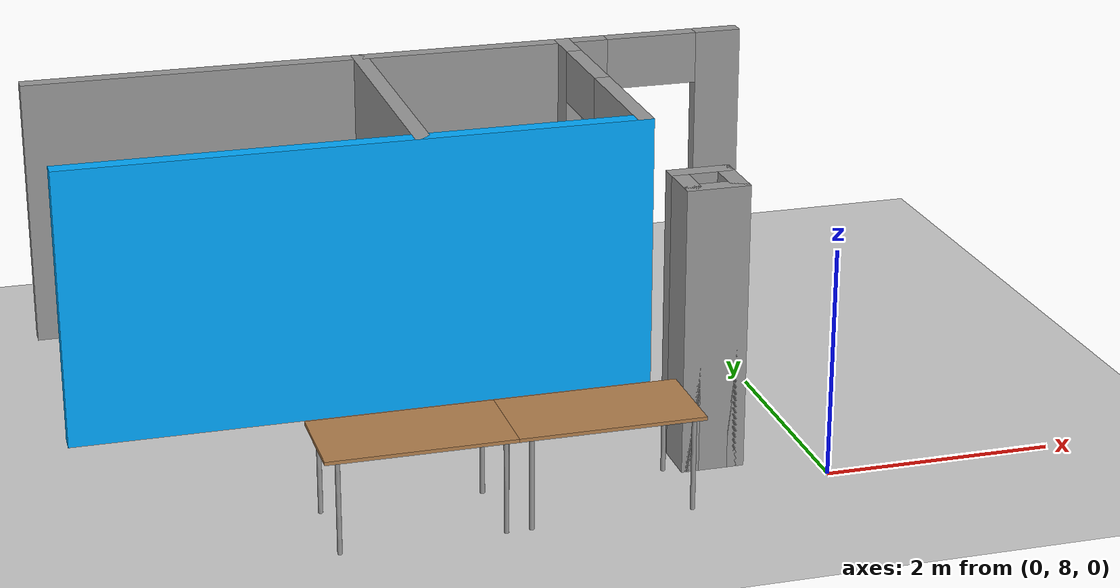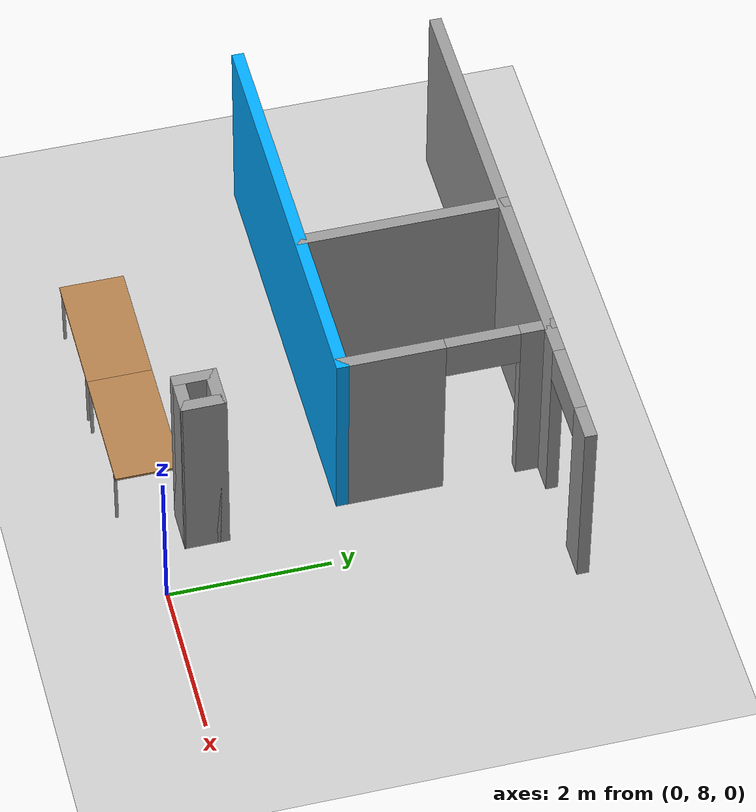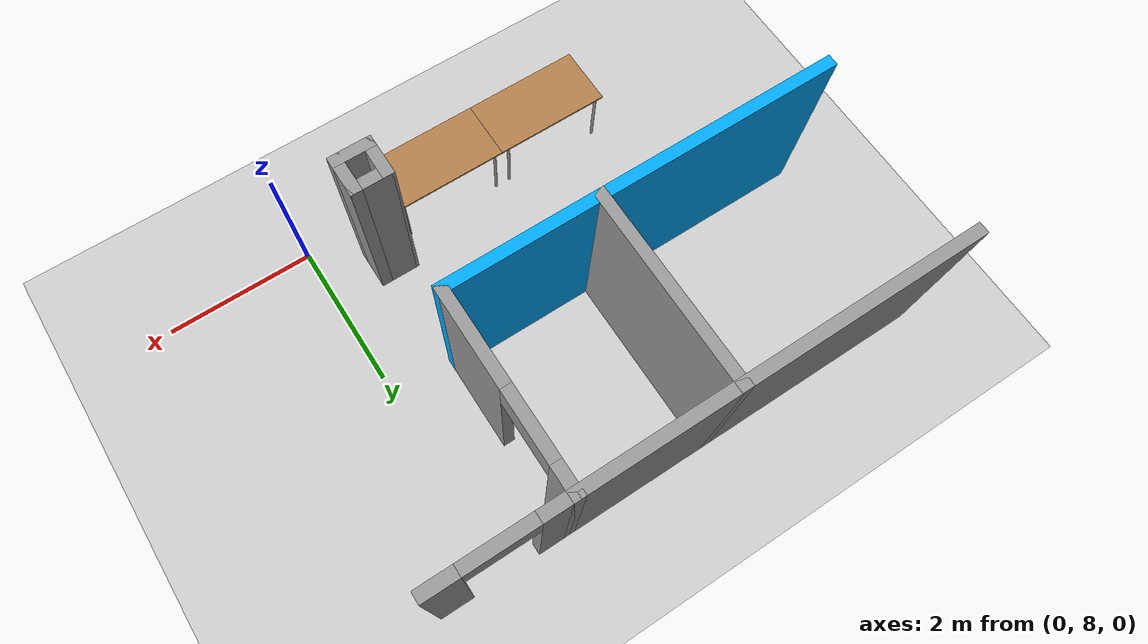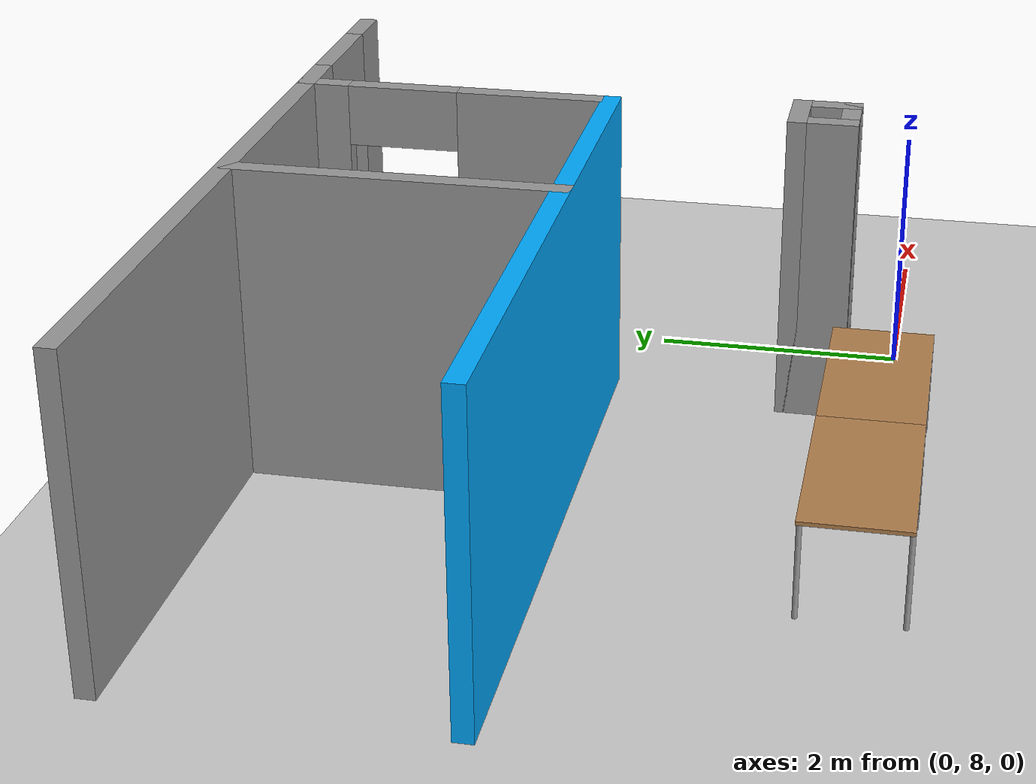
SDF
<sdf version="1.6">
 <world name="default">
  <model name="ground_plane">
   <static>1</static>
   <link name="link">
    <collision name="collision">
     <geometry><plane><normal>0 0 1</normal><size>100 100</size></plane></geometry>
     <surface><friction><ode><mu>100</mu><mu2>50</mu2></ode></friction></surface>
    </collision>
    <visual name="visual">
     <cast_shadows>0</cast_shadows>
     <geometry><plane><normal>0 0 1</normal><size>100 100</size></plane></geometry>
     <material>
      <script><uri>file://media/materials/scripts/gazebo.material</uri><name>Gazebo/Grey</name></script>
     </material>
    </visual>
   </link>
  </model>
  <model name="Building">
   <link name="Wall_42">
    <collision name="Wall_42_Collision">
     <geometry><box><size>5.25 0.15 2.5</size></box></geometry>
     <pose>0 0 1.25 0 -0 0</pose>
    </collision>
    <visual name="Wall_42_Visual">
     <pose>0 0 1.25 0 -0 0</pose>
     <geometry><box><size>5.25 0.15 2.5</size></box></geometry>
     <material>
      <script><uri>file://media/materials/scripts/gazebo.material</uri><name>Gazebo/Grey</name></script>
      <ambient>1 1 1 1</ambient>
     </material>
     <meta><layer>0</layer></meta>
    </visual>
    <pose>-3.45 12.8364 0 0 -0 0</pose>
   </link>
   <link name="Wall_44">
    <pose>-0.05 12.8364 0 0 -0 0</pose>
    <visual name="Wall_44_Visual_0">
     <pose>-0.676746 0 1.25 0 -0 0</pose>
     <geometry><box><size>0.496509 0.15 2.5</size></box></geometry>
     <material>
      <script><uri>file://media/materials/scripts/gazebo.material</uri><name>Gazebo/Grey</name></script>
      <ambient>1 1 1 1</ambient>
     </material>
     <meta><layer>0</layer></meta>
    </visual>
    <collision name="Wall_44_Collision_0">
     <geometry><box><size>0.496509 0.15 2.5</size></box></geometry>
     <pose>-0.676746 0 1.25 0 -0 0</pose>
    </collision>
    <visual name="Wall_44_Visual_1">
     <pose>0.698254 0 1.25 0 -0 0</pose>
     <geometry><box><size>0.453491 0.15 2.5</size></box></geometry>
     <material>
      <script><uri>file://media/materials/scripts/gazebo.material</uri><name>Gazebo/Grey</name></script>
      <ambient>1 1 1 1</ambient>
     </material>
     <meta><layer>0</layer></meta>
    </visual>
    <collision name="Wall_44_Collision_1">
     <geometry><box><size>0.453491 0.15 2.5</size></box></geometry>
     <pose>0.698254 0 1.25 0 -0 0</pose>
    </collision>
    <visual name="Wall_44_Visual_2">
     <pose>0.021509 0 2.25 0 -0 0</pose>
     <geometry><box><size>0.9 0.15 0.5</size></box></geometry>
     <material>
      <script><uri>file://media/materials/scripts/gazebo.material</uri><name>Gazebo/Grey</name></script>
      <ambient>1 1 1 1</ambient>
     </material>
     <meta><layer>0</layer></meta>
    </visual>
    <collision name="Wall_44_Collision_2">
     <geometry><box><size>0.9 0.15 0.5</size></box></geometry>
     <pose>0.021509 0 2.25 0 -0 0</pose>
    </collision>
   </link>
   <link name="Wall_47">
    <pose>-0.9 11.5864 0 0 0 -1.5708</pose>
    <visual name="Wall_47_Visual_0">
     <pose>-1.10875 0 1.25 0 -0 0</pose>
     <geometry><box><size>0.432501 0.15 2.5</size></box></geometry>
     <material>
      <script><uri>file://media/materials/scripts/gazebo.material</uri><name>Gazebo/Grey</name></script>
      <ambient>1 1 1 1</ambient>
     </material>
     <meta><layer>0</layer></meta>
    </visual>
    <collision name="Wall_47_Collision_0">
     <geometry><box><size>0.432501 0.15 2.5</size></box></geometry>
     <pose>-1.10875 0 1.25 0 -0 0</pose>
    </collision>
    <visual name="Wall_47_Visual_1">
     <pose>0.66625 0 1.25 0 -0 0</pose>
     <geometry><box><size>1.3175 0.15 2.5</size></box></geometry>
     <material>
      <script><uri>file://media/materials/scripts/gazebo.material</uri><name>Gazebo/Grey</name></script>
      <ambient>1 1 1 1</ambient>
     </material>
     <meta><layer>0</layer></meta>
    </visual>
    <collision name="Wall_47_Collision_1">
     <geometry><box><size>1.3175 0.15 2.5</size></box></geometry>
     <pose>0.66625 0 1.25 0 -0 0</pose>
    </collision>
    <visual name="Wall_47_Visual_2">
     <pose>-0.442499 0 2.25 0 -0 0</pose>
     <geometry><box><size>0.9 0.15 0.5</size></box></geometry>
     <material>
      <script><uri>file://media/materials/scripts/gazebo.material</uri><name>Gazebo/Grey</name></script>
      <ambient>1 1 1 1</ambient>
     </material>
     <meta><layer>0</layer></meta>
    </visual>
    <collision name="Wall_47_Collision_2">
     <geometry><box><size>0.9 0.15 0.5</size></box></geometry>
     <pose>-0.442499 0 2.25 0 -0 0</pose>
    </collision>
   </link>
   <link name="Wall_49">
    <collision name="Wall_49_Collision">
     <geometry><box><size>5.25 0.15 2.5</size></box></geometry>
     <pose>0 0 1.25 0 -0 0</pose>
    </collision>
    <visual name="Wall_49_Visual">
     <pose>0 0 1.25 0 -0 0</pose>
     <geometry><box><size>5.25 0.15 2.5</size></box></geometry>
     <material>
      <script><uri>file://media/materials/scripts/gazebo.material</uri><name>Gazebo/Grey</name></script>
      <ambient>0 0.666667 1 1</ambient>
     </material>
     <meta><layer>0</layer></meta>
    </visual>
    <pose>-3.45 10.3364 0 0 -0 3.14159</pose>
   </link>
   <link name="Wall_61">
    <collision name="Wall_61_Collision">
     <geometry><box><size>2.65 0.15 2.5</size></box></geometry>
     <pose>0 0 1.25 0 -0 0</pose>
    </collision>
    <visual name="Wall_61_Visual">
     <pose>0 0 1.25 0 -0 0</pose>
     <geometry><box><size>2.65 0.15 2.5</size></box></geometry>
     <material>
      <script><uri>file://media/materials/scripts/gazebo.material</uri><name>Gazebo/Grey</name></script>
      <ambient>1 1 1 1</ambient>
     </material>
     <meta><layer>0</layer></meta>
    </visual>
    <pose>-2.9 11.5864 0 0 0 -1.5708</pose>
   </link>
   <link name="Wall_63">
    <collision name="Wall_63_Collision">
     <geometry><box><size>0.55 0.15 2.5</size></box></geometry>
     <pose>0 0 1.25 0 -0 0</pose>
    </collision>
    <visual name="Wall_63_Visual">
     <pose>0 0 1.25 0 -0 0</pose>
     <geometry><box><size>0.55 0.15 2.5</size></box></geometry>
     <material>
      <script><uri>file://media/materials/scripts/gazebo.material</uri><name>Gazebo/Grey</name></script>
      <ambient>1 1 1 1</ambient>
     </material>
     <meta><layer>0</layer></meta>
    </visual>
    <pose>-0.9 8.83639 0 0 -0 3.14159</pose>
   </link>
   <link name="Wall_65">
    <collision name="Wall_65_Collision">
     <geometry><box><size>0.55 0.15 2.5</size></box></geometry>
     <pose>0 0 1.25 0 -0 0</pose>
    </collision>
    <visual name="Wall_65_Visual">
     <pose>0 0 1.25 0 -0 0</pose>
     <geometry><box><size>0.55 0.15 2.5</size></box></geometry>
     <material>
      <script><uri>file://media/materials/scripts/gazebo.material</uri><name>Gazebo/Grey</name></script>
      <ambient>1 1 1 1</ambient>
     </material>
     <meta><layer>0</layer></meta>
    </visual>
    <pose>-1.1 8.63639 0 0 0 -1.5708</pose>
   </link>
   <link name="Wall_67">
    <collision name="Wall_67_Collision">
     <geometry><box><size>0.55 0.15 2.5</size></box></geometry>
     <pose>0 0 1.25 0 -0 0</pose>
    </collision>
    <visual name="Wall_67_Visual">
     <pose>0 0 1.25 0 -0 0</pose>
     <geometry><box><size>0.55 0.15 2.5</size></box></geometry>
     <material>
      <script><uri>file://media/materials/scripts/gazebo.material</uri><name>Gazebo/Grey</name></script>
      <ambient>1 1 1 1</ambient>
     </material>
     <meta><layer>0</layer></meta>
    </visual>
    <pose>-0.9 8.43639 0 0 -0 0</pose>
   </link>
   <link name="Wall_69">
    <collision name="Wall_69_Collision">
     <geometry><box><size>0.55 0.15 2.5</size></box></geometry>
     <pose>0 0 1.25 0 -0 0</pose>
    </collision>
    <visual name="Wall_69_Visual">
     <pose>0 0 1.25 0 -0 0</pose>
     <geometry><box><size>0.55 0.15 2.5</size></box></geometry>
     <material>
      <script><uri>file://media/materials/scripts/gazebo.material</uri><name>Gazebo/Grey</name></script>
      <ambient>1 1 1 1</ambient>
     </material>
     <meta><layer>0</layer></meta>
    </visual>
    <pose>-0.7 8.63639 0 0 0 -1.5708</pose>
   </link>
   <static>1</static>
  </model>
  <model name="tablealt_0_clone">
   <link name="link">
    <inertial>
     <mass>1</mass>
     <inertia><ixx>1</ixx><ixy>0</ixy><ixz>0</ixz><iyy>1</iyy><iyz>0</iyz><izz>1</izz></inertia>
    </inertial>
    <visual name="back_right_leg">
     <pose>-0.68 -0.38 0.4 0 -0 0</pose>
     <geometry><cylinder><radius>0.02</radius><length>0.8</length></cylinder></geometry>
     <material>
      <script><uri>file://media/materials/scripts/gazebo.material</uri><name>Gazebo/Grey</name></script>
      <shader type="pixel"><normal_map>__default__</normal_map></shader>
      <ambient>0.3 0.3 0.3 1</ambient>
      <diffuse>0.7 0.7 0.7 1</diffuse>
      <specular>0.01 0.01 0.01 1</specular>
      <emissive>0 0 0 1</emissive>
     </material>
    </visual>
    <visual name="back_left_leg">
     <pose>-0.68 0.38 0.4 0 -0 0</pose>
     <geometry><cylinder><radius>0.02</radius><length>0.8</length></cylinder></geometry>
     <material>
      <script><uri>file://media/materials/scripts/gazebo.material</uri><name>Gazebo/Grey</name></script>
      <shader type="pixel"><normal_map>__default__</normal_map></shader>
      <ambient>0.3 0.3 0.3 1</ambient>
      <diffuse>0.7 0.7 0.7 1</diffuse>
      <specular>0.01 0.01 0.01 1</specular>
      <emissive>0 0 0 1</emissive>
     </material>
    </visual>
    <visual name="visual1">
     <pose>0 0 0.8 0 -0 0</pose>
     <geometry><box><size>1.57 0.8 0.03</size></box></geometry>
     <material>
      <script><uri>file://media/materials/scripts/gazebo.material</uri><name>Gazebo/Wood</name></script>
      <shader type="pixel"><normal_map>__default__</normal_map></shader>
      <ambient>1 1 1 1</ambient>
      <diffuse>1 1 1 1</diffuse>
      <specular>0.2 0.2 0.2 1</specular>
      <emissive>0 0 0 1</emissive>
     </material>
    </visual>
    <visual name="front_left_leg">
     <pose>0.68 0.38 0.4 0 -0 0</pose>
     <geometry><cylinder><radius>0.02</radius><length>0.8</length></cylinder></geometry>
     <material>
      <script><uri>file://media/materials/scripts/gazebo.material</uri><name>Gazebo/Grey</name></script>
      <shader type="pixel"><normal_map>__default__</normal_map></shader>
      <ambient>0.3 0.3 0.3 1</ambient>
      <diffuse>0.7 0.7 0.7 1</diffuse>
      <specular>0.01 0.01 0.01 1</specular>
      <emissive>0 0 0 1</emissive>
     </material>
    </visual>
    <visual name="front_right_leg">
     <pose>0.68 -0.38 0.4 0 -0 0</pose>
     <geometry><cylinder><radius>0.02</radius><length>0.8</length></cylinder></geometry>
     <material>
      <script><uri>file://media/materials/scripts/gazebo.material</uri><name>Gazebo/Grey</name></script>
      <shader type="pixel"><normal_map>__default__</normal_map></shader>
      <ambient>0.3 0.3 0.3 1</ambient>
      <diffuse>0.7 0.7 0.7 1</diffuse>
      <specular>0.01 0.01 0.01 1</specular>
      <emissive>0 0 0 1</emissive>
     </material>
    </visual>
    <collision name="front_right_leg">
     <pose>0.68 -0.38 0.4 0 -0 0</pose>
     <geometry><cylinder><radius>0.02</radius><length>0.8</length></cylinder></geometry>
     <surface>
      <friction>
       <ode><mu>1</mu><mu2>1</mu2><fdir1>0 0 0</fdir1><slip1>0</slip1><slip2>0</slip2></ode>
       <torsional>
        <coefficient>1</coefficient>
        <patch_radius>0</patch_radius>
        <surface_radius>0</surface_radius>
        <use_patch_radius>1</use_patch_radius>
        <ode><slip>0</slip></ode>
       </torsional>
      </friction>
      <bounce><restitution_coefficient>0</restitution_coefficient><threshold>1e+06</threshold></bounce>
      <contact>
       <collide_without_contact>0</collide_without_contact>
       <collide_without_contact_bitmask>1</collide_without_contact_bitmask>
       <collide_bitmask>1</collide_bitmask>
       <ode>
        <soft_cfm>0</soft_cfm>
        <soft_erp>0.2</soft_erp>
        <kp>1e+13</kp>
        <kd>1</kd>
        <max_vel>0.01</max_vel>
        <min_depth>0</min_depth>
       </ode>
       <bullet>
        <split_impulse>1</split_impulse>
        <split_impulse_penetration_threshold>-0.01</split_impulse_penetration_threshold>
        <soft_cfm>0</soft_cfm>
        <soft_erp>0.2</soft_erp>
        <kp>1e+13</kp>
        <kd>1</kd>
       </bullet>
      </contact>
     </surface>
    </collision>
    <collision name="surface">
     <pose>0 0 0.8 0 -0 0</pose>
     <geometry><box><size>1.5 0.8 0.03</size></box></geometry>
     <surface>
      <friction>
       <ode><mu>0.6</mu><mu2>0.6</mu2><fdir1>0 0 0</fdir1><slip1>0</slip1><slip2>0</slip2></ode>
       <torsional>
        <coefficient>1</coefficient>
        <patch_radius>0</patch_radius>
        <surface_radius>0</surface_radius>
        <use_patch_radius>1</use_patch_radius>
        <ode><slip>0</slip></ode>
       </torsional>
      </friction>
      <bounce><restitution_coefficient>0</restitution_coefficient><threshold>1e+06</threshold></bounce>
      <contact>
       <collide_without_contact>0</collide_without_contact>
       <collide_without_contact_bitmask>1</collide_without_contact_bitmask>
       <collide_bitmask>1</collide_bitmask>
       <ode>
        <soft_cfm>0</soft_cfm>
        <soft_erp>0.2</soft_erp>
        <kp>1e+13</kp>
        <kd>1</kd>
        <max_vel>0.01</max_vel>
        <min_depth>0</min_depth>
       </ode>
       <bullet>
        <split_impulse>1</split_impulse>
        <split_impulse_penetration_threshold>-0.01</split_impulse_penetration_threshold>
        <soft_cfm>0</soft_cfm>
        <soft_erp>0.2</soft_erp>
        <kp>1e+13</kp>
        <kd>1</kd>
       </bullet>
      </contact>
     </surface>
    </collision>
    <collision name="front_left_leg">
     <pose>0.68 0.38 0.4 0 -0 0</pose>
     <geometry><cylinder><radius>0.02</radius><length>0.8</length></cylinder></geometry>
     <surface>
      <friction>
       <ode><mu>1</mu><mu2>1</mu2><fdir1>0 0 0</fdir1><slip1>0</slip1><slip2>0</slip2></ode>
       <torsional>
        <coefficient>1</coefficient>
        <patch_radius>0</patch_radius>
        <surface_radius>0</surface_radius>
        <use_patch_radius>1</use_patch_radius>
        <ode><slip>0</slip></ode>
       </torsional>
      </friction>
      <bounce><restitution_coefficient>0</restitution_coefficient><threshold>1e+06</threshold></bounce>
      <contact>
       <collide_without_contact>0</collide_without_contact>
       <collide_without_contact_bitmask>1</collide_without_contact_bitmask>
       <collide_bitmask>1</collide_bitmask>
       <ode>
        <soft_cfm>0</soft_cfm>
        <soft_erp>0.2</soft_erp>
        <kp>1e+13</kp>
        <kd>1</kd>
        <max_vel>0.01</max_vel>
        <min_depth>0</min_depth>
       </ode>
       <bullet>
        <split_impulse>1</split_impulse>
        <split_impulse_penetration_threshold>-0.01</split_impulse_penetration_threshold>
        <soft_cfm>0</soft_cfm>
        <soft_erp>0.2</soft_erp>
        <kp>1e+13</kp>
        <kd>1</kd>
       </bullet>
      </contact>
     </surface>
    </collision>
    <collision name="back_left_leg">
     <pose>-0.68 0.38 0.4 0 -0 0</pose>
     <geometry><cylinder><radius>0.02</radius><length>0.8</length></cylinder></geometry>
     <surface>
      <friction>
       <ode><mu>1</mu><mu2>1</mu2><fdir1>0 0 0</fdir1><slip1>0</slip1><slip2>0</slip2></ode>
       <torsional>
        <coefficient>1</coefficient>
        <patch_radius>0</patch_radius>
        <surface_radius>0</surface_radius>
        <use_patch_radius>1</use_patch_radius>
        <ode><slip>0</slip></ode>
       </torsional>
      </friction>
      <bounce><restitution_coefficient>0</restitution_coefficient><threshold>1e+06</threshold></bounce>
      <contact>
       <collide_without_contact>0</collide_without_contact>
       <collide_without_contact_bitmask>1</collide_without_contact_bitmask>
       <collide_bitmask>1</collide_bitmask>
       <ode>
        <soft_cfm>0</soft_cfm>
        <soft_erp>0.2</soft_erp>
        <kp>1e+13</kp>
        <kd>1</kd>
        <max_vel>0.01</max_vel>
        <min_depth>0</min_depth>
       </ode>
       <bullet>
        <split_impulse>1</split_impulse>
        <split_impulse_penetration_threshold>-0.01</split_impulse_penetration_threshold>
        <soft_cfm>0</soft_cfm>
        <soft_erp>0.2</soft_erp>
        <kp>1e+13</kp>
        <kd>1</kd>
       </bullet>
      </contact>
     </surface>
    </collision>
    <collision name="back_right_leg">
     <pose>-0.68 -0.38 0.4 0 -0 0</pose>
     <geometry><cylinder><radius>0.02</radius><length>0.8</length></cylinder></geometry>
     <surface>
      <friction>
       <ode><mu>1</mu><mu2>1</mu2><fdir1>0 0 0</fdir1><slip1>0</slip1><slip2>0</slip2></ode>
       <torsional>
        <coefficient>1</coefficient>
        <patch_radius>0</patch_radius>
        <surface_radius>0</surface_radius>
        <use_patch_radius>1</use_patch_radius>
        <ode><slip>0</slip></ode>
       </torsional>
      </friction>
      <bounce><restitution_coefficient>0</restitution_coefficient><threshold>1e+06</threshold></bounce>
      <contact>
       <collide_without_contact>0</collide_without_contact>
       <collide_without_contact_bitmask>1</collide_without_contact_bitmask>
       <collide_bitmask>1</collide_bitmask>
       <ode>
        <soft_cfm>0</soft_cfm>
        <soft_erp>0.2</soft_erp>
        <kp>1e+13</kp>
        <kd>1</kd>
        <max_vel>0.01</max_vel>
        <min_depth>0</min_depth>
       </ode>
       <bullet>
        <split_impulse>1</split_impulse>
        <split_impulse_penetration_threshold>-0.01</split_impulse_penetration_threshold>
        <soft_cfm>0</soft_cfm>
        <soft_erp>0.2</soft_erp>
        <kp>1e+13</kp>
        <kd>1</kd>
       </bullet>
      </contact>
     </surface>
    </collision>
   </link>
   <static>1</static>
   <pose>-3.56 8.07 0 0 -0 0</pose>
  </model>
  <model name="tablealt_0_clone_0">
   <link name="link">
    <inertial>
     <mass>1</mass>
     <inertia><ixx>1</ixx><ixy>0</ixy><ixz>0</ixz><iyy>1</iyy><iyz>0</iyz><izz>1</izz></inertia>
    </inertial>
    <visual name="back_right_leg">
     <pose>-0.68 -0.38 0.4 0 -0 0</pose>
     <geometry><cylinder><radius>0.02</radius><length>0.8</length></cylinder></geometry>
     <material>
      <script><uri>file://media/materials/scripts/gazebo.material</uri><name>Gazebo/Grey</name></script>
      <shader type="pixel"><normal_map>__default__</normal_map></shader>
      <ambient>0.3 0.3 0.3 1</ambient>
      <diffuse>0.7 0.7 0.7 1</diffuse>
      <specular>0.01 0.01 0.01 1</specular>
      <emissive>0 0 0 1</emissive>
     </material>
    </visual>
    <visual name="back_left_leg">
     <pose>-0.68 0.38 0.4 0 -0 0</pose>
     <geometry><cylinder><radius>0.02</radius><length>0.8</length></cylinder></geometry>
     <material>
      <script><uri>file://media/materials/scripts/gazebo.material</uri><name>Gazebo/Grey</name></script>
      <shader type="pixel"><normal_map>__default__</normal_map></shader>
      <ambient>0.3 0.3 0.3 1</ambient>
      <diffuse>0.7 0.7 0.7 1</diffuse>
      <specular>0.01 0.01 0.01 1</specular>
      <emissive>0 0 0 1</emissive>
     </material>
    </visual>
    <visual name="visual1">
     <pose>0 0 0.8 0 -0 0</pose>
     <geometry><box><size>1.57 0.8 0.03</size></box></geometry>
     <material>
      <script><uri>file://media/materials/scripts/gazebo.material</uri><name>Gazebo/Wood</name></script>
      <shader type="pixel"><normal_map>__default__</normal_map></shader>
      <ambient>1 1 1 1</ambient>
      <diffuse>1 1 1 1</diffuse>
      <specular>0.2 0.2 0.2 1</specular>
      <emissive>0 0 0 1</emissive>
     </material>
    </visual>
    <visual name="front_left_leg">
     <pose>0.68 0.38 0.4 0 -0 0</pose>
     <geometry><cylinder><radius>0.02</radius><length>0.8</length></cylinder></geometry>
     <material>
      <script><uri>file://media/materials/scripts/gazebo.material</uri><name>Gazebo/Grey</name></script>
      <shader type="pixel"><normal_map>__default__</normal_map></shader>
      <ambient>0.3 0.3 0.3 1</ambient>
      <diffuse>0.7 0.7 0.7 1</diffuse>
      <specular>0.01 0.01 0.01 1</specular>
      <emissive>0 0 0 1</emissive>
     </material>
    </visual>
    <visual name="front_right_leg">
     <pose>0.68 -0.38 0.4 0 -0 0</pose>
     <geometry><cylinder><radius>0.02</radius><length>0.8</length></cylinder></geometry>
     <material>
      <script><uri>file://media/materials/scripts/gazebo.material</uri><name>Gazebo/Grey</name></script>
      <shader type="pixel"><normal_map>__default__</normal_map></shader>
      <ambient>0.3 0.3 0.3 1</ambient>
      <diffuse>0.7 0.7 0.7 1</diffuse>
      <specular>0.01 0.01 0.01 1</specular>
      <emissive>0 0 0 1</emissive>
     </material>
    </visual>
    <collision name="front_right_leg">
     <pose>0.68 -0.38 0.4 0 -0 0</pose>
     <geometry><cylinder><radius>0.02</radius><length>0.8</length></cylinder></geometry>
     <surface>
      <friction>
       <ode><mu>1</mu><mu2>1</mu2><fdir1>0 0 0</fdir1><slip1>0</slip1><slip2>0</slip2></ode>
       <torsional>
        <coefficient>1</coefficient>
        <patch_radius>0</patch_radius>
        <surface_radius>0</surface_radius>
        <use_patch_radius>1</use_patch_radius>
        <ode><slip>0</slip></ode>
       </torsional>
      </friction>
      <bounce><restitution_coefficient>0</restitution_coefficient><threshold>1e+06</threshold></bounce>
      <contact>
       <collide_without_contact>0</collide_without_contact>
       <collide_without_contact_bitmask>1</collide_without_contact_bitmask>
       <collide_bitmask>1</collide_bitmask>
       <ode>
        <soft_cfm>0</soft_cfm>
        <soft_erp>0.2</soft_erp>
        <kp>1e+13</kp>
        <kd>1</kd>
        <max_vel>0.01</max_vel>
        <min_depth>0</min_depth>
       </ode>
       <bullet>
        <split_impulse>1</split_impulse>
        <split_impulse_penetration_threshold>-0.01</split_impulse_penetration_threshold>
        <soft_cfm>0</soft_cfm>
        <soft_erp>0.2</soft_erp>
        <kp>1e+13</kp>
        <kd>1</kd>
       </bullet>
      </contact>
     </surface>
    </collision>
    <collision name="surface">
     <pose>0 0 0.8 0 -0 0</pose>
     <geometry><box><size>1.5 0.8 0.03</size></box></geometry>
     <surface>
      <friction>
       <ode><mu>0.6</mu><mu2>0.6</mu2><fdir1>0 0 0</fdir1><slip1>0</slip1><slip2>0</slip2></ode>
       <torsional>
        <coefficient>1</coefficient>
        <patch_radius>0</patch_radius>
        <surface_radius>0</surface_radius>
        <use_patch_radius>1</use_patch_radius>
        <ode><slip>0</slip></ode>
       </torsional>
      </friction>
      <bounce><restitution_coefficient>0</restitution_coefficient><threshold>1e+06</threshold></bounce>
      <contact>
       <collide_without_contact>0</collide_without_contact>
       <collide_without_contact_bitmask>1</collide_without_contact_bitmask>
       <collide_bitmask>1</collide_bitmask>
       <ode>
        <soft_cfm>0</soft_cfm>
        <soft_erp>0.2</soft_erp>
        <kp>1e+13</kp>
        <kd>1</kd>
        <max_vel>0.01</max_vel>
        <min_depth>0</min_depth>
       </ode>
       <bullet>
        <split_impulse>1</split_impulse>
        <split_impulse_penetration_threshold>-0.01</split_impulse_penetration_threshold>
        <soft_cfm>0</soft_cfm>
        <soft_erp>0.2</soft_erp>
        <kp>1e+13</kp>
        <kd>1</kd>
       </bullet>
      </contact>
     </surface>
    </collision>
    <collision name="front_left_leg">
     <pose>0.68 0.38 0.4 0 -0 0</pose>
     <geometry><cylinder><radius>0.02</radius><length>0.8</length></cylinder></geometry>
     <surface>
      <friction>
       <ode><mu>1</mu><mu2>1</mu2><fdir1>0 0 0</fdir1><slip1>0</slip1><slip2>0</slip2></ode>
       <torsional>
        <coefficient>1</coefficient>
        <patch_radius>0</patch_radius>
        <surface_radius>0</surface_radius>
        <use_patch_radius>1</use_patch_radius>
        <ode><slip>0</slip></ode>
       </torsional>
      </friction>
      <bounce><restitution_coefficient>0</restitution_coefficient><threshold>1e+06</threshold></bounce>
      <contact>
       <collide_without_contact>0</collide_without_contact>
       <collide_without_contact_bitmask>1</collide_without_contact_bitmask>
       <collide_bitmask>1</collide_bitmask>
       <ode>
        <soft_cfm>0</soft_cfm>
        <soft_erp>0.2</soft_erp>
        <kp>1e+13</kp>
        <kd>1</kd>
        <max_vel>0.01</max_vel>
        <min_depth>0</min_depth>
       </ode>
       <bullet>
        <split_impulse>1</split_impulse>
        <split_impulse_penetration_threshold>-0.01</split_impulse_penetration_threshold>
        <soft_cfm>0</soft_cfm>
        <soft_erp>0.2</soft_erp>
        <kp>1e+13</kp>
        <kd>1</kd>
       </bullet>
      </contact>
     </surface>
    </collision>
    <collision name="back_left_leg">
     <pose>-0.68 0.38 0.4 0 -0 0</pose>
     <geometry><cylinder><radius>0.02</radius><length>0.8</length></cylinder></geometry>
     <surface>
      <friction>
       <ode><mu>1</mu><mu2>1</mu2><fdir1>0 0 0</fdir1><slip1>0</slip1><slip2>0</slip2></ode>
       <torsional>
        <coefficient>1</coefficient>
        <patch_radius>0</patch_radius>
        <surface_radius>0</surface_radius>
        <use_patch_radius>1</use_patch_radius>
        <ode><slip>0</slip></ode>
       </torsional>
      </friction>
      <bounce><restitution_coefficient>0</restitution_coefficient><threshold>1e+06</threshold></bounce>
      <contact>
       <collide_without_contact>0</collide_without_contact>
       <collide_without_contact_bitmask>1</collide_without_contact_bitmask>
       <collide_bitmask>1</collide_bitmask>
       <ode>
        <soft_cfm>0</soft_cfm>
        <soft_erp>0.2</soft_erp>
        <kp>1e+13</kp>
        <kd>1</kd>
        <max_vel>0.01</max_vel>
        <min_depth>0</min_depth>
       </ode>
       <bullet>
        <split_impulse>1</split_impulse>
        <split_impulse_penetration_threshold>-0.01</split_impulse_penetration_threshold>
        <soft_cfm>0</soft_cfm>
        <soft_erp>0.2</soft_erp>
        <kp>1e+13</kp>
        <kd>1</kd>
       </bullet>
      </contact>
     </surface>
    </collision>
    <collision name="back_right_leg">
     <pose>-0.68 -0.38 0.4 0 -0 0</pose>
     <geometry><cylinder><radius>0.02</radius><length>0.8</length></cylinder></geometry>
     <surface>
      <friction>
       <ode><mu>1</mu><mu2>1</mu2><fdir1>0 0 0</fdir1><slip1>0</slip1><slip2>0</slip2></ode>
       <torsional>
        <coefficient>1</coefficient>
        <patch_radius>0</patch_radius>
        <surface_radius>0</surface_radius>
        <use_patch_radius>1</use_patch_radius>
        <ode><slip>0</slip></ode>
       </torsional>
      </friction>
      <bounce><restitution_coefficient>0</restitution_coefficient><threshold>1e+06</threshold></bounce>
      <contact>
       <collide_without_contact>0</collide_without_contact>
       <collide_without_contact_bitmask>1</collide_without_contact_bitmask>
       <collide_bitmask>1</collide_bitmask>
       <ode>
        <soft_cfm>0</soft_cfm>
        <soft_erp>0.2</soft_erp>
        <kp>1e+13</kp>
        <kd>1</kd>
        <max_vel>0.01</max_vel>
        <min_depth>0</min_depth>
       </ode>
       <bullet>
        <split_impulse>1</split_impulse>
        <split_impulse_penetration_threshold>-0.01</split_impulse_penetration_threshold>
        <soft_cfm>0</soft_cfm>
        <soft_erp>0.2</soft_erp>
        <kp>1e+13</kp>
        <kd>1</kd>
       </bullet>
      </contact>
     </surface>
    </collision>
   </link>
   <static>1</static>
   <pose>-1.99 8.07 0 0 -0 0</pose>
  </model>
 </world>
</sdf>
